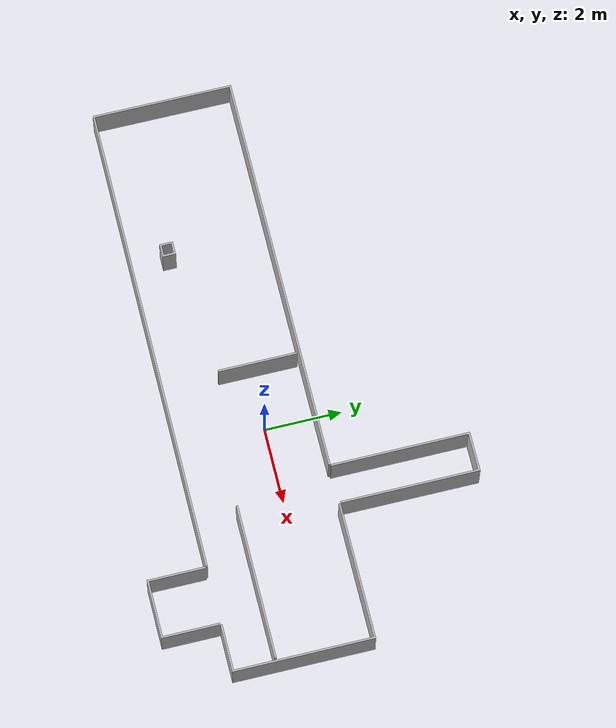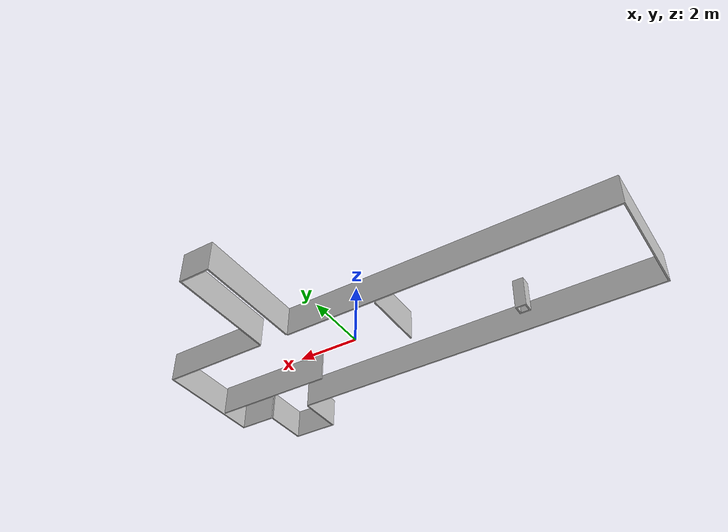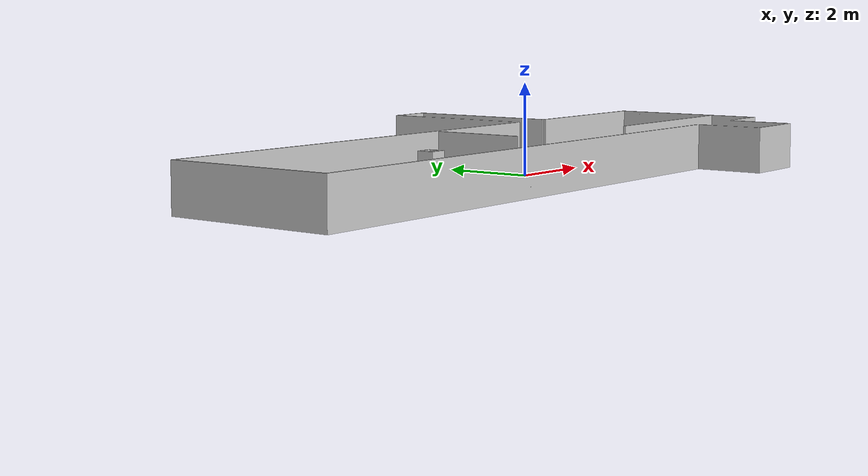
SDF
<?xml version="1.0" ?>
<sdf version="1.4">
  <model name="custom_2">
    <link name="link">
      <inertial>
        <mass>1.0</mass>
        <inertia>
          <ixx>0.0</ixx>
          <ixy>0.0</ixy>
          <ixz>0.0</ixz>
          <iyy>0.0</iyy>
          <iyz>0.0</iyz>
          <izz>0.0</izz>
        </inertia>
      </inertial>
      <collision name="collision">
        <pose>0 0 0 0 0 0</pose>
        <geometry>
          <mesh>
            <uri>model://custom_2/meshes/custom_2_origin_shift.stl</uri>
          </mesh>
        </geometry>
      </collision>
      <visual name="visual">
        <pose>0 0 0 0 0 0</pose>
        <geometry>
          <mesh>
            <uri>model://custom_2/meshes/custom_2_origin_shift.stl</uri>
          </mesh>
        </geometry>
      </visual>
    </link>
  </model>
</sdf>
